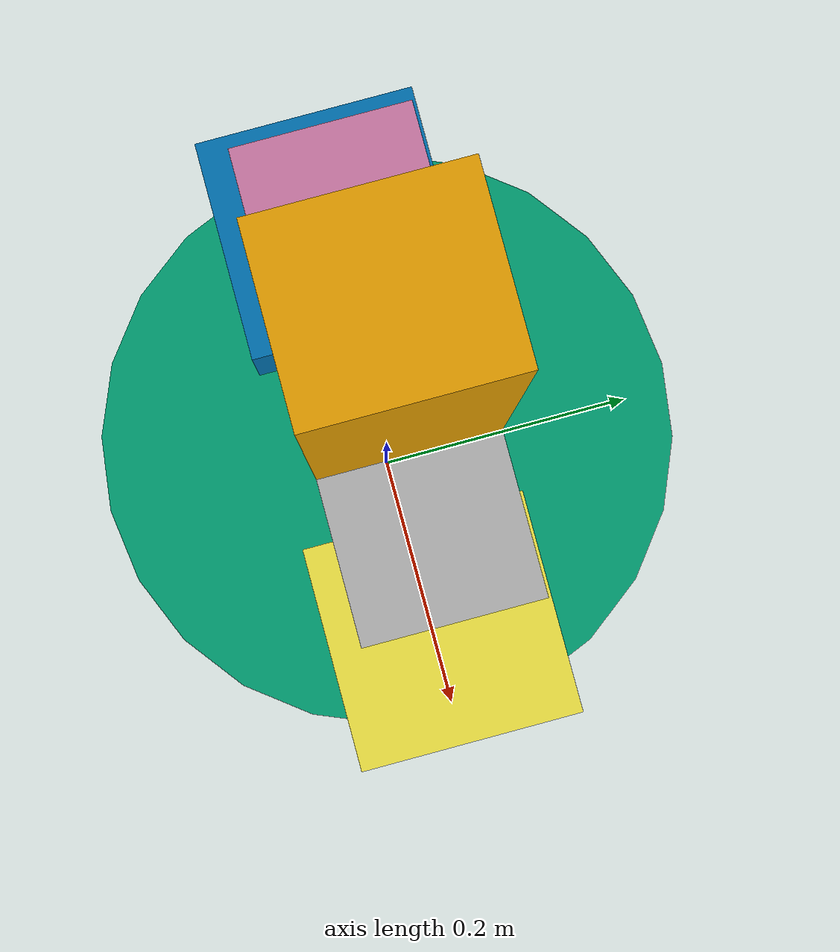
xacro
<?xml version="1.0"?>
<robot xmlns:xacro="http://www.ros.org/wiki/xacro" name="robot_demo" >

    <xacro:include filename="$(find robot_description)/urdf/gazebo.xacro"/>
    <xacro:include filename="$(find robot_description)/urdf/ros2_controll.xacro"/>

    <xacro:property name="PI" value="3.14159"/>
    <xacro:property name="effort" value="30.0"/>
    <xacro:property name="velocity" value="10.0"/>

    <xacro:macro name="def_inertia" params="mass">
        <inertial>
            <mass value="${mass}"/>
            <inertia ixx="1.0" ixy="0.0" ixz="0.0"
                      iyy="1.0" iyz="0.0"
                      izz="1.0"/>
        </inertial>
    </xacro:macro>

    <xacro:macro name="def_transmission" params="number">
        <transmission name="transmission_${number}">
            <plugin>transmissio_interface/SimpleTransmission</plugin>
            <actuator name="motor_${number}" role="actuator1"/>
            <joint name="joint_${number}" role="joint1">
                <mechanical_reduction>1.0</mechanical_reduction>
            </joint>

        </transmission>
    </xacro:macro>

    <link name="world"/>

    <link name="base_link">
        <xacro:def_inertia mass="1.0"/>
        <visual>
            <origin xyz="0 0 0.1" rpy="0 0 0"/>
            <geometry>
               <cylinder length="0.2" radius="0.2"/>
            </geometry>
        </visual>
        <collision>
            <origin xyz="0 0 0.1" rpy="0 0 0"/>
            <geometry>
               <cylinder length="0.2" radius="0.2"/>
            </geometry>
        </collision>

    </link>
    <joint name="base_joint" type="fixed">
        <parent link="world"/>
        <child link="base_link"/>
        <origin xyz="0 0 0" rpy="0 0 0"/>
    </joint>

    <link name="base_plate">
        <xacro:def_inertia mass="0.2"/>
        <visual>
            <origin xyz="0 0 0.025" rpy="0 0 0"/>
            <geometry>
               <cylinder length="0.05" radius="0.2"/>
            </geometry>
        </visual>
        <collision>
            <origin xyz="0 0 0.025" rpy="0 0 0"/>
            <geometry>
               <cylinder length="0.05" radius="0.2"/>
            </geometry>
        </collision>

    </link>

    <joint name="joint_1" type="revolute">
        <parent link="base_link"/>
        <child link="base_plate"/>
        <axis xyz="0 0 1"/>
        <origin xyz="0 0 0.2" rpy="0 0 0"/>
        <limit lower="-1.5707" upper="1.5707" effort="30.0" velocity="10.0"/>
    </joint>

    <link name="support_base_1">
        <xacro:def_inertia mass="0.05"/>
        <visual>
            <origin xyz="0 0 0.09" rpy="0 0 0"/>
            <geometry>
                <box size="0.15 0.15 0.1"/>
            </geometry>
        </visual>
        <collision>
            <origin xyz="0 0 0.09" rpy="0 0 0"/>
            <geometry>
                <box size="0.15 0.15 0.1"/>
            </geometry>
        </collision>
    </link>

    <joint name="support_joint_1" type="fixed">
        <parent link="base_plate"/>
        <child link="support_base_1"/>
        <origin xyz="0.14 0 0" rpy="0 0 0"/>
    </joint>

    <link name="support_base_2">
        <xacro:def_inertia mass="0.05"/>
        <visual>
            <origin xyz="0 0 0.09" rpy="0 0 0"/>
            <geometry>
                <box size="0.15 0.15 0.1"/>
            </geometry>
        </visual>
        <collision>
            <origin xyz="0 0 0.09" rpy="0 0 0"/>
            <geometry>
                <box size="0.15 0.15 0.1"/>
            </geometry>
        </collision>
    </link>

    <joint name="support_joint_2" type="fixed">
        <parent link="base_plate"/>
        <child link="support_base_2"/>
        <origin xyz="-0.14 0 0" rpy="0 0 0"/>
    </joint>

    <link name="verticle_link">
        <xacro:def_inertia mass="0.25"/>
        <visual>
            <origin xyz="0 0 0.13" rpy="0 0 0"/>
            <geometry>
                <box size="0.09 0.1 0.3"/>
            </geometry>
        </visual>
        <collision>
            <origin xyz="0 0 0.13" rpy="0 0 0"/>
            <geometry>
                <box size="0.09 0.1 0.3"/>
            </geometry>
        </collision>
    </link>

    <joint name="joint_2" type="revolute">
        <parent link="support_base_1"/>
        <child link="verticle_link"/>
        <origin xyz="-0.14 0 0.1" rpy="0 0 0"/>
        <axis xyz="1 0 0"/>
        <limit lower="-1.5707" upper="1.5707" effort="30.0" velocity="10.0"/>
    </joint>

    <link name="verticle_support_link_1">
        <xacro:def_inertia mass="0.05"/>
        <visual>
            <origin xyz="0 0 0" rpy="0 0 0"/>
            <geometry>
                <box size="0.09 0.1 0.1"/>
            </geometry>
        </visual>
        <collision>
            <origin xyz="0 0 0" rpy="0 0 0"/>
            <geometry>
                <box size="0.09 0.1 0.1"/>
            </geometry>
        </collision>
    </link>

    <joint name="vertical_support_joint_1" type="fixed">
        <parent link="verticle_link"/>
        <child link="verticle_support_link_1"/>
        <origin xyz="-0.09 0 0.30" rpy="0 0 0"/>
    </joint>

    <link name="verticle_support_link_2">
        <xacro:def_inertia mass="0.05"/>
        <visual>
            <origin xyz="0 0 0" rpy="0 0 0"/>
            <geometry>
                <box size="0.09 0.1 0.1"/>
            </geometry>
        </visual>
        <collision>
            <origin xyz="0 0 0" rpy="0 0 0"/>
            <geometry>
                <box size="0.09 0.1 0.1"/>
            </geometry>
        </collision>
    </link>

    <joint name="vertical_support_joint_2" type="fixed">
        <parent link="verticle_link"/>
        <child link="verticle_support_link_2"/>
        <origin xyz="0.09 0 0.30" rpy="0 0 0"/>
    </joint>

    <link name="forward_link">
        <xacro:def_inertia mass="0.5"/>
        <visual>
            <origin xyz="0 0 0.17" rpy="0 0 0"/>
            <geometry>
                <box size="0.09 0.1 0.3"/>
            </geometry>
        </visual>
        <collision>
            <origin xyz="0 0 0.17" rpy="0 0 0"/>
            <geometry>
                <box size="0.09 0.1 0.3"/>
            </geometry>
        </collision>
    </link>

    <joint name="joint_3" type="revolute">
        <parent link="verticle_support_link_1"/>
        <child link="forward_link"/>
        <origin xyz="0.09 0 0" rpy="0 0 0"/>
        <axis xyz="1 0 0"/>
        <limit lower="-1.5707" upper="1.5707" effort="30.0" velocity="10.0"/>
    </joint>

    <xacro:def_transmission number="1"/>
    <xacro:def_transmission number="2"/>
    <xacro:def_transmission number="3"/>

</robot>
